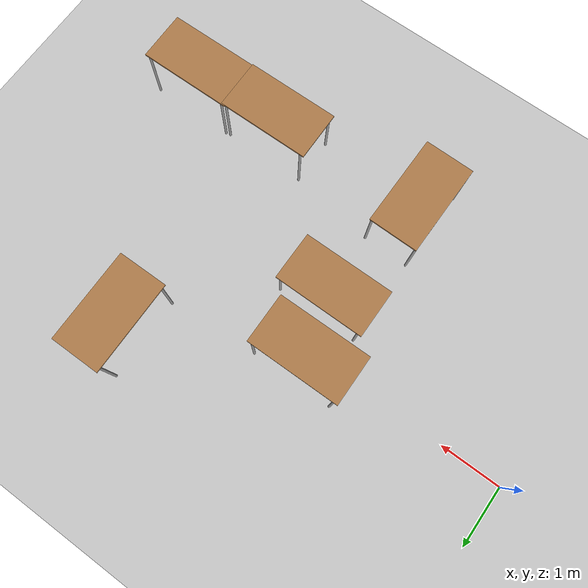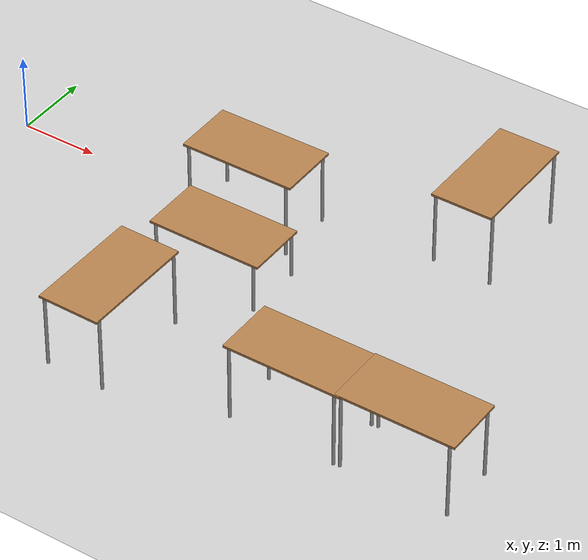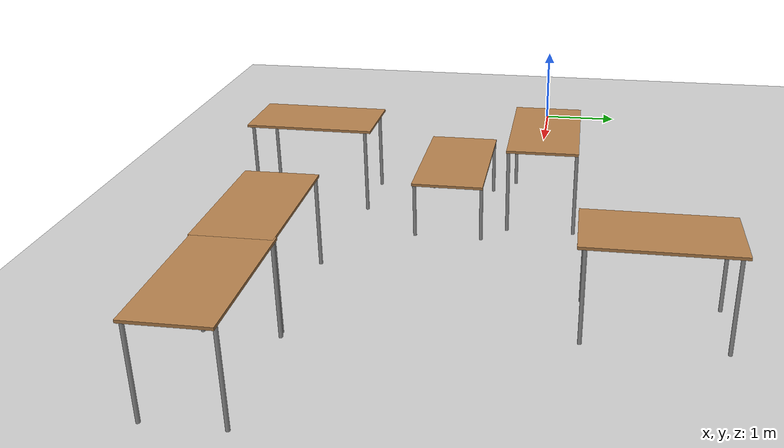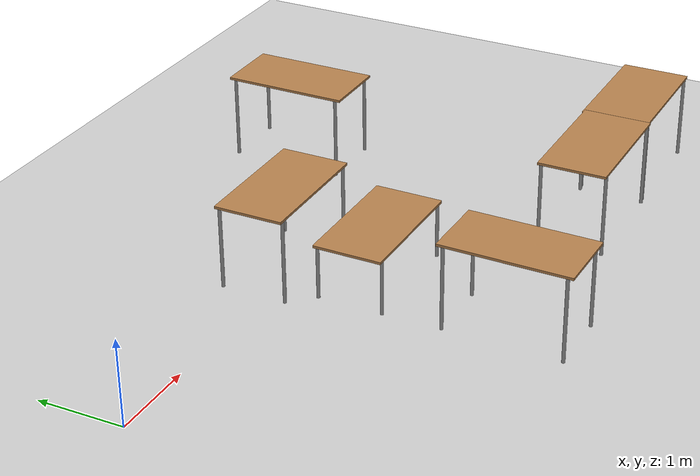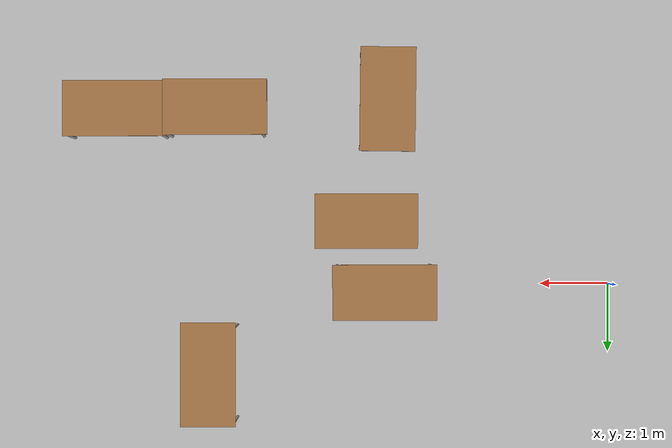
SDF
<sdf version="1.6">
 <world name="default">
  <model name="ground_plane">
   <static>1</static>
   <link name="link">
    <collision name="collision">
     <geometry><plane><normal>0 0 1</normal><size>100 100</size></plane></geometry>
     <surface><friction><ode><mu>100</mu><mu2>50</mu2></ode></friction></surface>
    </collision>
    <visual name="visual">
     <cast_shadows>0</cast_shadows>
     <geometry><plane><normal>0 0 1</normal><size>100 100</size></plane></geometry>
     <material>
      <script><uri>file://media/materials/scripts/gazebo.material</uri><name>Gazebo/Grey</name></script>
     </material>
    </visual>
   </link>
  </model>
  <model name="table_clone_0">
   <static>1</static>
   <link name="link">
    <collision name="surface">
     <pose>0 0 1 0 -0 0</pose>
     <geometry><box><size>1.5 0.8 0.03</size></box></geometry>
     <surface><friction><ode><mu>0.6</mu><mu2>0.6</mu2></ode></friction></surface>
    </collision>
    <visual name="visual1">
     <pose>0 0 1 0 -0 0</pose>
     <geometry><box><size>1.5 0.8 0.03</size></box></geometry>
     <material>
      <script><uri>file://media/materials/scripts/gazebo.material</uri><name>Gazebo/Wood</name></script>
     </material>
    </visual>
    <collision name="front_left_leg">
     <pose>0.68 0.38 0.5 0 -0 0</pose>
     <geometry><cylinder><radius>0.02</radius><length>1</length></cylinder></geometry>
    </collision>
    <visual name="front_left_leg">
     <pose>0.68 0.38 0.5 0 -0 0</pose>
     <geometry><cylinder><radius>0.02</radius><length>1</length></cylinder></geometry>
     <material>
      <script><uri>file://media/materials/scripts/gazebo.material</uri><name>Gazebo/Grey</name></script>
     </material>
    </visual>
    <collision name="front_right_leg">
     <pose>0.68 -0.38 0.5 0 -0 0</pose>
     <geometry><cylinder><radius>0.02</radius><length>1</length></cylinder></geometry>
    </collision>
    <visual name="front_right_leg">
     <pose>0.68 -0.38 0.5 0 -0 0</pose>
     <geometry><cylinder><radius>0.02</radius><length>1</length></cylinder></geometry>
     <material>
      <script><uri>file://media/materials/scripts/gazebo.material</uri><name>Gazebo/Grey</name></script>
     </material>
    </visual>
    <collision name="back_right_leg">
     <pose>-0.68 -0.38 0.5 0 -0 0</pose>
     <geometry><cylinder><radius>0.02</radius><length>1</length></cylinder></geometry>
    </collision>
    <visual name="back_right_leg">
     <pose>-0.68 -0.38 0.5 0 -0 0</pose>
     <geometry><cylinder><radius>0.02</radius><length>1</length></cylinder></geometry>
     <material>
      <script><uri>file://media/materials/scripts/gazebo.material</uri><name>Gazebo/Grey</name></script>
     </material>
    </visual>
    <collision name="back_left_leg">
     <pose>-0.68 0.38 0.5 0 -0 0</pose>
     <geometry><cylinder><radius>0.02</radius><length>1</length></cylinder></geometry>
    </collision>
    <visual name="back_left_leg">
     <pose>-0.68 0.38 0.5 0 -0 0</pose>
     <geometry><cylinder><radius>0.02</radius><length>1</length></cylinder></geometry>
     <material>
      <script><uri>file://media/materials/scripts/gazebo.material</uri><name>Gazebo/Grey</name></script>
     </material>
    </visual>
   </link>
   <pose>3.32196 0.119027 0 0 0 -3.13587</pose>
  </model>
  <model name="table_clone_0_clone">
   <static>1</static>
   <link name="link">
    <collision name="surface">
     <pose>0 0 1 0 -0 0</pose>
     <geometry><box><size>1.5 0.8 0.03</size></box></geometry>
     <surface><friction><ode><mu>0.6</mu><mu2>0.6</mu2></ode></friction></surface>
    </collision>
    <visual name="visual1">
     <pose>0 0 1 0 -0 0</pose>
     <geometry><box><size>1.5 0.8 0.03</size></box></geometry>
     <material>
      <script><uri>file://media/materials/scripts/gazebo.material</uri><name>Gazebo/Wood</name></script>
     </material>
    </visual>
    <collision name="front_left_leg">
     <pose>0.68 0.38 0.5 0 -0 0</pose>
     <geometry><cylinder><radius>0.02</radius><length>1</length></cylinder></geometry>
    </collision>
    <visual name="front_left_leg">
     <pose>0.68 0.38 0.5 0 -0 0</pose>
     <geometry><cylinder><radius>0.02</radius><length>1</length></cylinder></geometry>
     <material>
      <script><uri>file://media/materials/scripts/gazebo.material</uri><name>Gazebo/Grey</name></script>
     </material>
    </visual>
    <collision name="front_right_leg">
     <pose>0.68 -0.38 0.5 0 -0 0</pose>
     <geometry><cylinder><radius>0.02</radius><length>1</length></cylinder></geometry>
    </collision>
    <visual name="front_right_leg">
     <pose>0.68 -0.38 0.5 0 -0 0</pose>
     <geometry><cylinder><radius>0.02</radius><length>1</length></cylinder></geometry>
     <material>
      <script><uri>file://media/materials/scripts/gazebo.material</uri><name>Gazebo/Grey</name></script>
     </material>
    </visual>
    <collision name="back_right_leg">
     <pose>-0.68 -0.38 0.5 0 -0 0</pose>
     <geometry><cylinder><radius>0.02</radius><length>1</length></cylinder></geometry>
    </collision>
    <visual name="back_right_leg">
     <pose>-0.68 -0.38 0.5 0 -0 0</pose>
     <geometry><cylinder><radius>0.02</radius><length>1</length></cylinder></geometry>
     <material>
      <script><uri>file://media/materials/scripts/gazebo.material</uri><name>Gazebo/Grey</name></script>
     </material>
    </visual>
    <collision name="back_left_leg">
     <pose>-0.68 0.38 0.5 0 -0 0</pose>
     <geometry><cylinder><radius>0.02</radius><length>1</length></cylinder></geometry>
    </collision>
    <visual name="back_left_leg">
     <pose>-0.68 0.38 0.5 0 -0 0</pose>
     <geometry><cylinder><radius>0.02</radius><length>1</length></cylinder></geometry>
     <material>
      <script><uri>file://media/materials/scripts/gazebo.material</uri><name>Gazebo/Grey</name></script>
     </material>
    </visual>
   </link>
   <pose>5.85461 1.30553 0 0 -0 1.57373</pose>
  </model>
  <model name="table_clone_0_clone_0">
   <static>1</static>
   <link name="link">
    <collision name="surface">
     <pose>0 0 1 0 -0 0</pose>
     <geometry><box><size>1.5 0.8 0.03</size></box></geometry>
     <surface><friction><ode><mu>0.6</mu><mu2>0.6</mu2></ode></friction></surface>
    </collision>
    <visual name="visual1">
     <pose>0 0 1 0 -0 0</pose>
     <geometry><box><size>1.5 0.8 0.03</size></box></geometry>
     <material>
      <script><uri>file://media/materials/scripts/gazebo.material</uri><name>Gazebo/Wood</name></script>
     </material>
    </visual>
    <collision name="front_left_leg">
     <pose>0.68 0.38 0.5 0 -0 0</pose>
     <geometry><cylinder><radius>0.02</radius><length>1</length></cylinder></geometry>
    </collision>
    <visual name="front_left_leg">
     <pose>0.68 0.38 0.5 0 -0 0</pose>
     <geometry><cylinder><radius>0.02</radius><length>1</length></cylinder></geometry>
     <material>
      <script><uri>file://media/materials/scripts/gazebo.material</uri><name>Gazebo/Grey</name></script>
     </material>
    </visual>
    <collision name="front_right_leg">
     <pose>0.68 -0.38 0.5 0 -0 0</pose>
     <geometry><cylinder><radius>0.02</radius><length>1</length></cylinder></geometry>
    </collision>
    <visual name="front_right_leg">
     <pose>0.68 -0.38 0.5 0 -0 0</pose>
     <geometry><cylinder><radius>0.02</radius><length>1</length></cylinder></geometry>
     <material>
      <script><uri>file://media/materials/scripts/gazebo.material</uri><name>Gazebo/Grey</name></script>
     </material>
    </visual>
    <collision name="back_right_leg">
     <pose>-0.68 -0.38 0.5 0 -0 0</pose>
     <geometry><cylinder><radius>0.02</radius><length>1</length></cylinder></geometry>
    </collision>
    <visual name="back_right_leg">
     <pose>-0.68 -0.38 0.5 0 -0 0</pose>
     <geometry><cylinder><radius>0.02</radius><length>1</length></cylinder></geometry>
     <material>
      <script><uri>file://media/materials/scripts/gazebo.material</uri><name>Gazebo/Grey</name></script>
     </material>
    </visual>
    <collision name="back_left_leg">
     <pose>-0.68 0.38 0.5 0 -0 0</pose>
     <geometry><cylinder><radius>0.02</radius><length>1</length></cylinder></geometry>
    </collision>
    <visual name="back_left_leg">
     <pose>-0.68 0.38 0.5 0 -0 0</pose>
     <geometry><cylinder><radius>0.02</radius><length>1</length></cylinder></geometry>
     <material>
      <script><uri>file://media/materials/scripts/gazebo.material</uri><name>Gazebo/Grey</name></script>
     </material>
    </visual>
   </link>
   <pose>5.76753 -2.54254 0 0 0 -3.13587</pose>
  </model>
  <model name="table_clone_0_clone_0_clone">
   <static>1</static>
   <link name="link">
    <collision name="surface">
     <pose>0 0 1 0 -0 0</pose>
     <geometry><box><size>1.5 0.8 0.03</size></box></geometry>
     <surface><friction><ode><mu>0.6</mu><mu2>0.6</mu2></ode></friction></surface>
    </collision>
    <visual name="visual1">
     <pose>0 0 1 0 -0 0</pose>
     <geometry><box><size>1.5 0.8 0.03</size></box></geometry>
     <material>
      <script><uri>file://media/materials/scripts/gazebo.material</uri><name>Gazebo/Wood</name></script>
     </material>
    </visual>
    <collision name="front_left_leg">
     <pose>0.68 0.38 0.5 0 -0 0</pose>
     <geometry><cylinder><radius>0.02</radius><length>1</length></cylinder></geometry>
    </collision>
    <visual name="front_left_leg">
     <pose>0.68 0.38 0.5 0 -0 0</pose>
     <geometry><cylinder><radius>0.02</radius><length>1</length></cylinder></geometry>
     <material>
      <script><uri>file://media/materials/scripts/gazebo.material</uri><name>Gazebo/Grey</name></script>
     </material>
    </visual>
    <collision name="front_right_leg">
     <pose>0.68 -0.38 0.5 0 -0 0</pose>
     <geometry><cylinder><radius>0.02</radius><length>1</length></cylinder></geometry>
    </collision>
    <visual name="front_right_leg">
     <pose>0.68 -0.38 0.5 0 -0 0</pose>
     <geometry><cylinder><radius>0.02</radius><length>1</length></cylinder></geometry>
     <material>
      <script><uri>file://media/materials/scripts/gazebo.material</uri><name>Gazebo/Grey</name></script>
     </material>
    </visual>
    <collision name="back_right_leg">
     <pose>-0.68 -0.38 0.5 0 -0 0</pose>
     <geometry><cylinder><radius>0.02</radius><length>1</length></cylinder></geometry>
    </collision>
    <visual name="back_right_leg">
     <pose>-0.68 -0.38 0.5 0 -0 0</pose>
     <geometry><cylinder><radius>0.02</radius><length>1</length></cylinder></geometry>
     <material>
      <script><uri>file://media/materials/scripts/gazebo.material</uri><name>Gazebo/Grey</name></script>
     </material>
    </visual>
    <collision name="back_left_leg">
     <pose>-0.68 0.38 0.5 0 -0 0</pose>
     <geometry><cylinder><radius>0.02</radius><length>1</length></cylinder></geometry>
    </collision>
    <visual name="back_left_leg">
     <pose>-0.68 0.38 0.5 0 -0 0</pose>
     <geometry><cylinder><radius>0.02</radius><length>1</length></cylinder></geometry>
     <material>
      <script><uri>file://media/materials/scripts/gazebo.material</uri><name>Gazebo/Grey</name></script>
     </material>
    </visual>
   </link>
   <pose>7.20338 -2.51858 0 0 0 -3.13587</pose>
  </model>
  <model name="table_clone_1">
   <static>1</static>
   <link name="link">
    <collision name="surface">
     <pose>0 0 1 0 -0 0</pose>
     <geometry><box><size>1.5 0.8 0.03</size></box></geometry>
     <surface><friction><ode><mu>0.6</mu><mu2>0.6</mu2></ode></friction></surface>
    </collision>
    <visual name="visual1">
     <pose>0 0 1 0 -0 0</pose>
     <geometry><box><size>1.5 0.8 0.03</size></box></geometry>
     <material>
      <script><uri>file://media/materials/scripts/gazebo.material</uri><name>Gazebo/Wood</name></script>
     </material>
    </visual>
    <collision name="front_left_leg">
     <pose>0.68 0.38 0.5 0 -0 0</pose>
     <geometry><cylinder><radius>0.02</radius><length>1</length></cylinder></geometry>
    </collision>
    <visual name="front_left_leg">
     <pose>0.68 0.38 0.5 0 -0 0</pose>
     <geometry><cylinder><radius>0.02</radius><length>1</length></cylinder></geometry>
     <material>
      <script><uri>file://media/materials/scripts/gazebo.material</uri><name>Gazebo/Grey</name></script>
     </material>
    </visual>
    <collision name="front_right_leg">
     <pose>0.68 -0.38 0.5 0 -0 0</pose>
     <geometry><cylinder><radius>0.02</radius><length>1</length></cylinder></geometry>
    </collision>
    <visual name="front_right_leg">
     <pose>0.68 -0.38 0.5 0 -0 0</pose>
     <geometry><cylinder><radius>0.02</radius><length>1</length></cylinder></geometry>
     <material>
      <script><uri>file://media/materials/scripts/gazebo.material</uri><name>Gazebo/Grey</name></script>
     </material>
    </visual>
    <collision name="back_right_leg">
     <pose>-0.68 -0.38 0.5 0 -0 0</pose>
     <geometry><cylinder><radius>0.02</radius><length>1</length></cylinder></geometry>
    </collision>
    <visual name="back_right_leg">
     <pose>-0.68 -0.38 0.5 0 -0 0</pose>
     <geometry><cylinder><radius>0.02</radius><length>1</length></cylinder></geometry>
     <material>
      <script><uri>file://media/materials/scripts/gazebo.material</uri><name>Gazebo/Grey</name></script>
     </material>
    </visual>
    <collision name="back_left_leg">
     <pose>-0.68 0.38 0.5 0 -0 0</pose>
     <geometry><cylinder><radius>0.02</radius><length>1</length></cylinder></geometry>
    </collision>
    <visual name="back_left_leg">
     <pose>-0.68 0.38 0.5 0 -0 0</pose>
     <geometry><cylinder><radius>0.02</radius><length>1</length></cylinder></geometry>
     <material>
      <script><uri>file://media/materials/scripts/gazebo.material</uri><name>Gazebo/Grey</name></script>
     </material>
    </visual>
   </link>
   <pose>3.28341 -2.66037 0 0 0 -1.58073</pose>
  </model>
  <model name="table_0">
   <static>1</static>
   <link name="link">
    <collision name="surface">
     <pose>0 0 1 0 -0 0</pose>
     <geometry><box><size>1.5 0.8 0.03</size></box></geometry>
     <surface><friction><ode><mu>0.6</mu><mu2>0.6</mu2></ode></friction></surface>
    </collision>
    <visual name="visual1">
     <pose>0 0 1 0 -0 0</pose>
     <geometry><box><size>1.5 0.8 0.03</size></box></geometry>
     <material>
      <script><uri>file://media/materials/scripts/gazebo.material</uri><name>Gazebo/Wood</name></script>
     </material>
    </visual>
    <collision name="front_left_leg">
     <pose>0.68 0.38 0.5 0 -0 0</pose>
     <geometry><cylinder><radius>0.02</radius><length>1</length></cylinder></geometry>
    </collision>
    <visual name="front_left_leg">
     <pose>0.68 0.38 0.5 0 -0 0</pose>
     <geometry><cylinder><radius>0.02</radius><length>1</length></cylinder></geometry>
     <material>
      <script><uri>file://media/materials/scripts/gazebo.material</uri><name>Gazebo/Grey</name></script>
     </material>
    </visual>
    <collision name="front_right_leg">
     <pose>0.68 -0.38 0.5 0 -0 0</pose>
     <geometry><cylinder><radius>0.02</radius><length>1</length></cylinder></geometry>
    </collision>
    <visual name="front_right_leg">
     <pose>0.68 -0.38 0.5 0 -0 0</pose>
     <geometry><cylinder><radius>0.02</radius><length>1</length></cylinder></geometry>
     <material>
      <script><uri>file://media/materials/scripts/gazebo.material</uri><name>Gazebo/Grey</name></script>
     </material>
    </visual>
    <collision name="back_right_leg">
     <pose>-0.68 -0.38 0.5 0 -0 0</pose>
     <geometry><cylinder><radius>0.02</radius><length>1</length></cylinder></geometry>
    </collision>
    <visual name="back_right_leg">
     <pose>-0.68 -0.38 0.5 0 -0 0</pose>
     <geometry><cylinder><radius>0.02</radius><length>1</length></cylinder></geometry>
     <material>
      <script><uri>file://media/materials/scripts/gazebo.material</uri><name>Gazebo/Grey</name></script>
     </material>
    </visual>
    <collision name="back_left_leg">
     <pose>-0.68 0.38 0.5 0 -0 0</pose>
     <geometry><cylinder><radius>0.02</radius><length>1</length></cylinder></geometry>
    </collision>
    <visual name="back_left_leg">
     <pose>-0.68 0.38 0.5 0 -0 0</pose>
     <geometry><cylinder><radius>0.02</radius><length>1</length></cylinder></geometry>
     <material>
      <script><uri>file://media/materials/scripts/gazebo.material</uri><name>Gazebo/Grey</name></script>
     </material>
    </visual>
   </link>
   <pose>3.58526 -0.908898 -0.349409 0 -0 0</pose>
  </model>
 </world>
</sdf>
